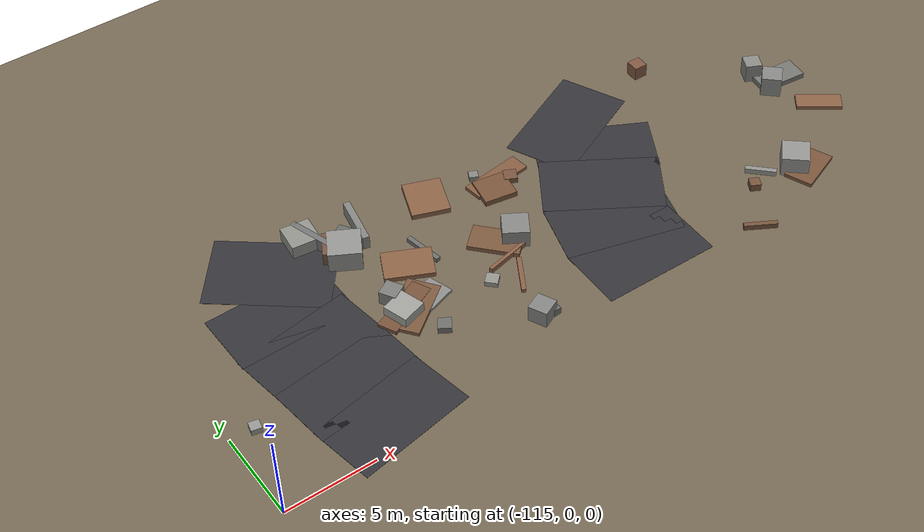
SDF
<sdf version="1.6">
 <world name="navitas_arena">
  <model name="ground_plane">
   <static>true</static>
   <link name="link">
    <collision name="collision">
     <geometry><plane><normal>0 0 1</normal><size>400 400</size></plane></geometry>
     <surface><friction><ode><mu>0.550</mu><mu2>0.550</mu2></ode></friction></surface>
    </collision>
    <visual name="visual">
     <cast_shadows>false</cast_shadows>
     <geometry><plane><normal>0 0 1</normal><size>400 400</size></plane></geometry>
     <material><ambient>0.450 0.400 0.320 1</ambient><diffuse>0.450 0.400 0.320 1</diffuse></material>
    </visual>
   </link>
  </model>
  <model name="road_kolay_1_13">
   <static>true</static>
   <pose>-108.025 1.800 0.040 0 0 1.749</pose>
   <link name="link">
    <collision name="col"><geometry><box><size>3.745 6.600 0.020</size></box></geometry></collision>
    <visual name="vis">
     <geometry><box><size>3.745 6.600 0.020</size></box></geometry>
     <material><ambient>0.20 0.20 0.22 1</ambient><diffuse>0.20 0.20 0.22 1</diffuse></material>
    </visual>
   </link>
  </model>
  <model name="road_kolay_1_14">
   <static>true</static>
   <pose>-108.442 4.600 0.040 0 0 1.688</pose>
   <link name="link">
    <collision name="col"><geometry><box><size>3.719 6.600 0.020</size></box></geometry></collision>
    <visual name="vis">
     <geometry><box><size>3.719 6.600 0.020</size></box></geometry>
     <material><ambient>0.20 0.20 0.22 1</ambient><diffuse>0.20 0.20 0.22 1</diffuse></material>
    </visual>
   </link>
  </model>
  <model name="road_kolay_1_15">
   <static>true</static>
   <pose>-108.822 7.460 0.040 0 0 1.717</pose>
   <link name="link">
    <collision name="col"><geometry><box><size>3.851 6.600 0.020</size></box></geometry></collision>
    <visual name="vis">
     <geometry><box><size>3.851 6.600 0.020</size></box></geometry>
     <material><ambient>0.20 0.20 0.22 1</ambient><diffuse>0.20 0.20 0.22 1</diffuse></material>
    </visual>
   </link>
  </model>
  <model name="road_kolay_1_16">
   <static>true</static>
   <pose>-109.058 10.340 0.040 0 0 1.586</pose>
   <link name="link">
    <collision name="col"><geometry><box><size>3.740 6.600 0.020</size></box></geometry></collision>
    <visual name="vis">
     <geometry><box><size>3.740 6.600 0.020</size></box></geometry>
     <material><ambient>0.20 0.20 0.22 1</ambient><diffuse>0.20 0.20 0.22 1</diffuse></material>
    </visual>
   </link>
  </model>
  <model name="road_kolay_1_17">
   <static>true</static>
   <pose>-107.990 13.129 0.040 0 0 0.898</pose>
   <link name="link">
    <collision name="col"><geometry><box><size>4.399 6.600 0.020</size></box></geometry></collision>
    <visual name="vis">
     <geometry><box><size>4.399 6.600 0.020</size></box></geometry>
     <material><ambient>0.20 0.20 0.22 1</ambient><diffuse>0.20 0.20 0.22 1</diffuse></material>
    </visual>
   </link>
  </model>
  <model name="road_kolay_2_9">
   <static>true</static>
   <pose>-91.807 3.200 0.040 0 0 1.559</pose>
   <link name="link">
    <collision name="col"><geometry><box><size>3.700 6.600 0.020</size></box></geometry></collision>
    <visual name="vis">
     <geometry><box><size>3.700 6.600 0.020</size></box></geometry>
     <material><ambient>0.20 0.20 0.22 1</ambient><diffuse>0.20 0.20 0.22 1</diffuse></material>
    </visual>
   </link>
  </model>
  <model name="road_kolay_2_10">
   <static>true</static>
   <pose>-91.428 5.898 0.040 0 0 1.298</pose>
   <link name="link">
    <collision name="col"><geometry><box><size>3.595 6.600 0.020</size></box></geometry></collision>
    <visual name="vis">
     <geometry><box><size>3.595 6.600 0.020</size></box></geometry>
     <material><ambient>0.20 0.20 0.22 1</ambient><diffuse>0.20 0.20 0.22 1</diffuse></material>
    </visual>
   </link>
  </model>
  <model name="road_kolay_2_11">
   <static>true</static>
   <pose>-90.288 8.426 0.040 0 0 1.007</pose>
   <link name="link">
    <collision name="col"><geometry><box><size>3.811 6.600 0.020</size></box></geometry></collision>
    <visual name="vis">
     <geometry><box><size>3.811 6.600 0.020</size></box></geometry>
     <material><ambient>0.20 0.20 0.22 1</ambient><diffuse>0.20 0.20 0.22 1</diffuse></material>
    </visual>
   </link>
  </model>
  <model name="road_kolay_2_12">
   <static>true</static>
   <pose>-88.901 10.817 0.040 0 0 1.087</pose>
   <link name="link">
    <collision name="col"><geometry><box><size>3.523 6.600 0.020</size></box></geometry></collision>
    <visual name="vis">
     <geometry><box><size>3.523 6.600 0.020</size></box></geometry>
     <material><ambient>0.20 0.20 0.22 1</ambient><diffuse>0.20 0.20 0.22 1</diffuse></material>
    </visual>
   </link>
  </model>
  <model name="road_kolay_2_13">
   <static>true</static>
   <pose>-88.925 13.350 0.040 0 0 2.004</pose>
   <link name="link">
    <collision name="col"><geometry><box><size>3.923 6.600 0.020</size></box></geometry></collision>
    <visual name="vis">
     <geometry><box><size>3.923 6.600 0.020</size></box></geometry>
     <material><ambient>0.20 0.20 0.22 1</ambient><diffuse>0.20 0.20 0.22 1</diffuse></material>
    </visual>
   </link>
  </model>
  <model name="blk_kolay_1_1_1">
   <static>true</static>
   <pose>-104.322 11.859 0.600 0 0 2.634</pose>
   <link name="link">
    <collision name="col"><geometry><box><size>1.782 1.782 1.199</size></box></geometry></collision>
    <visual name="vis">
     <geometry><box><size>1.782 1.782 1.199</size></box></geometry>
     <material><ambient>0.57 0.57 0.56 1</ambient><diffuse>0.57 0.57 0.56 1</diffuse></material>
    </visual>
   </link>
  </model>
  <model name="blk_kolay_1_1_2">
   <static>true</static>
   <pose>-104.964 13.025 0.400 0 0 1.879</pose>
   <link name="link">
    <collision name="col"><geometry><box><size>4.086 0.338 0.800</size></box></geometry></collision>
    <visual name="vis">
     <geometry><box><size>4.086 0.338 0.800</size></box></geometry>
     <material><ambient>0.45 0.45 0.45 1</ambient><diffuse>0.45 0.45 0.45 1</diffuse></material>
    </visual>
   </link>
  </model>
  <model name="blk_kolay_1_1_4">
   <static>true</static>
   <pose>-103.806 12.782 0.400 0 0 0.540</pose>
   <link name="link">
    <collision name="col"><geometry><box><size>0.953 0.953 0.800</size></box></geometry></collision>
    <visual name="vis">
     <geometry><box><size>0.953 0.953 0.800</size></box></geometry>
     <material><ambient>0.41 0.41 0.40 1</ambient><diffuse>0.41 0.41 0.40 1</diffuse></material>
    </visual>
   </link>
  </model>
  <model name="blk_kolay_1_1_6">
   <static>true</static>
   <pose>-104.458 12.369 0.400 0 0 2.639</pose>
   <link name="link">
    <collision name="col"><geometry><box><size>1.557 1.557 0.800</size></box></geometry></collision>
    <visual name="vis">
     <geometry><box><size>1.557 1.557 0.800</size></box></geometry>
     <material><ambient>0.47 0.33 0.24 1</ambient><diffuse>0.47 0.33 0.24 1</diffuse></material>
    </visual>
   </link>
  </model>
  <model name="blk_kolay_1_1_8">
   <static>true</static>
   <pose>-102.776 13.210 0.400 0 0 1.379</pose>
   <link name="link">
    <collision name="col"><geometry><box><size>2.851 0.372 0.800</size></box></geometry></collision>
    <visual name="vis">
     <geometry><box><size>2.851 0.372 0.800</size></box></geometry>
     <material><ambient>0.51 0.51 0.50 1</ambient><diffuse>0.51 0.51 0.50 1</diffuse></material>
    </visual>
   </link>
  </model>
  <model name="blk_kolay_1_1_9">
   <static>true</static>
   <pose>-105.637 14.066 0.400 0 0 1.455</pose>
   <link name="link">
    <collision name="col"><geometry><box><size>1.610 1.610 0.800</size></box></geometry></collision>
    <visual name="vis">
     <geometry><box><size>1.610 1.610 0.800</size></box></geometry>
     <material><ambient>0.56 0.56 0.54 1</ambient><diffuse>0.56 0.56 0.54 1</diffuse></material>
    </visual>
   </link>
  </model>
  <model name="blk_kolay_3_1_2">
   <static>true</static>
   <pose>-83.050 14.462 0.400 0 0 3.119</pose>
   <link name="link">
    <collision name="col"><geometry><box><size>0.777 0.777 0.800</size></box></geometry></collision>
    <visual name="vis">
     <geometry><box><size>0.777 0.777 0.800</size></box></geometry>
     <material><ambient>0.49 0.34 0.25 1</ambient><diffuse>0.49 0.34 0.25 1</diffuse></material>
    </visual>
   </link>
  </model>
  <model name="deb_kolay_8">
   <static>true</static>
   <pose>-80.963 3.409 0.577 0 0 0.845</pose>
   <link name="link">
    <collision name="col"><geometry><box><size>1.508 1.508 1.155</size></box></geometry></collision>
    <visual name="vis">
     <geometry><box><size>1.508 1.508 1.155</size></box></geometry>
     <material><ambient>0.57 0.57 0.56 1</ambient><diffuse>0.57 0.57 0.56 1</diffuse></material>
    </visual>
   </link>
  </model>
  <model name="deb_kolay_10">
   <static>true</static>
   <pose>-104.046 6.777 0.382 0 0 1.870</pose>
   <link name="link">
    <collision name="col"><geometry><box><size>1.433 1.433 0.765</size></box></geometry></collision>
    <visual name="vis">
     <geometry><box><size>1.433 1.433 0.765</size></box></geometry>
     <material><ambient>0.62 0.62 0.60 1</ambient><diffuse>0.62 0.62 0.60 1</diffuse></material>
    </visual>
   </link>
  </model>
  <model name="deb_kolay_13">
   <static>true</static>
   <pose>-80.438 2.837 0.106 0 0 0.374</pose>
   <link name="link">
    <collision name="col"><geometry><box><size>2.607 1.601 0.213</size></box></geometry></collision>
    <visual name="vis">
     <geometry><box><size>2.607 1.601 0.213</size></box></geometry>
     <material><ambient>0.47 0.33 0.23 1</ambient><diffuse>0.47 0.33 0.23 1</diffuse></material>
    </visual>
   </link>
  </model>
  <model name="deb_kolay_15">
   <static>true</static>
   <pose>-98.607 12.939 0.154 0 0 1.221</pose>
   <link name="link">
    <collision name="col"><geometry><box><size>2.431 2.108 0.307</size></box></geometry></collision>
    <visual name="vis">
     <geometry><box><size>2.431 2.108 0.307</size></box></geometry>
     <material><ambient>0.54 0.38 0.27 1</ambient><diffuse>0.54 0.38 0.27 1</diffuse></material>
    </visual>
   </link>
  </model>
  <model name="deb_kolay_16">
   <static>true</static>
   <pose>-77.864 10.486 0.547 0 0 1.128</pose>
   <link name="link">
    <collision name="col"><geometry><box><size>0.928 0.928 1.095</size></box></geometry></collision>
    <visual name="vis">
     <geometry><box><size>0.928 0.928 1.095</size></box></geometry>
     <material><ambient>0.53 0.53 0.52 1</ambient><diffuse>0.53 0.53 0.52 1</diffuse></material>
    </visual>
   </link>
  </model>
  <model name="deb_kolay_25">
   <static>true</static>
   <pose>-85.562 0.948 0.156 0 0 2.621</pose>
   <link name="link">
    <collision name="col"><geometry><box><size>1.815 0.260 0.312</size></box></geometry></collision>
    <visual name="vis">
     <geometry><box><size>1.815 0.260 0.312</size></box></geometry>
     <material><ambient>0.45 0.32 0.23 1</ambient><diffuse>0.45 0.32 0.23 1</diffuse></material>
    </visual>
   </link>
  </model>
  <model name="deb_kolay_28">
   <static>true</static>
   <pose>-97.736 5.515 0.111 0 0 1.058</pose>
   <link name="link">
    <collision name="col"><geometry><box><size>2.294 0.247 0.223</size></box></geometry></collision>
    <visual name="vis">
     <geometry><box><size>2.294 0.247 0.223</size></box></geometry>
     <material><ambient>0.53 0.37 0.26 1</ambient><diffuse>0.53 0.37 0.26 1</diffuse></material>
    </visual>
   </link>
  </model>
  <model name="deb_kolay_36">
   <static>true</static>
   <pose>-97.414 8.191 0.133 0 0 2.306</pose>
   <link name="link">
    <collision name="col"><geometry><box><size>2.800 1.593 0.266</size></box></geometry></collision>
    <visual name="vis">
     <geometry><box><size>2.800 1.593 0.266</size></box></geometry>
     <material><ambient>0.48 0.34 0.24 1</ambient><diffuse>0.48 0.34 0.24 1</diffuse></material>
    </visual>
   </link>
  </model>
  <model name="deb_kolay_40">
   <static>true</static>
   <pose>-103.966 8.029 0.397 0 0 2.089</pose>
   <link name="link">
    <collision name="col"><geometry><box><size>0.954 0.954 0.795</size></box></geometry></collision>
    <visual name="vis">
     <geometry><box><size>0.954 0.954 0.795</size></box></geometry>
     <material><ambient>0.48 0.48 0.47 1</ambient><diffuse>0.48 0.48 0.47 1</diffuse></material>
    </visual>
   </link>
  </model>
  <model name="deb_kolay_41">
   <static>true</static>
   <pose>-77.736 8.934 0.591 0 0 2.373</pose>
   <link name="link">
    <collision name="col"><geometry><box><size>1.121 1.121 1.182</size></box></geometry></collision>
    <visual name="vis">
     <geometry><box><size>1.121 1.121 1.182</size></box></geometry>
     <material><ambient>0.52 0.52 0.51 1</ambient><diffuse>0.52 0.52 0.51 1</diffuse></material>
    </visual>
   </link>
  </model>
  <model name="deb_kolay_43">
   <static>true</static>
   <pose>-103.805 7.110 0.112 0 0 0.438</pose>
   <link name="link">
    <collision name="col"><geometry><box><size>3.334 1.106 0.223</size></box></geometry></collision>
    <visual name="vis">
     <geometry><box><size>3.334 1.106 0.223</size></box></geometry>
     <material><ambient>0.46 0.32 0.23 1</ambient><diffuse>0.46 0.32 0.23 1</diffuse></material>
    </visual>
   </link>
  </model>
  <model name="deb_kolay_46">
   <static>true</static>
   <pose>-76.802 9.417 0.159 0 0 3.038</pose>
   <link name="link">
    <collision name="col"><geometry><box><size>2.715 1.374 0.318</size></box></geometry></collision>
    <visual name="vis">
     <geometry><box><size>2.715 1.374 0.318</size></box></geometry>
     <material><ambient>0.45 0.45 0.44 1</ambient><diffuse>0.45 0.45 0.44 1</diffuse></material>
    </visual>
   </link>
  </model>
  <model name="deb_kolay_55">
   <static>true</static>
   <pose>-95.585 12.878 0.157 0 0 1.131</pose>
   <link name="link">
    <collision name="col"><geometry><box><size>0.497 0.497 0.314</size></box></geometry></collision>
    <visual name="vis">
     <geometry><box><size>0.497 0.497 0.314</size></box></geometry>
     <material><ambient>0.52 0.52 0.50 1</ambient><diffuse>0.52 0.52 0.50 1</diffuse></material>
    </visual>
   </link>
  </model>
  <model name="deb_kolay_63">
   <static>true</static>
   <pose>-98.535 2.644 0.483 0 0 2.010</pose>
   <link name="link">
    <collision name="col"><geometry><box><size>1.066 1.066 0.966</size></box></geometry></collision>
    <visual name="vis">
     <geometry><box><size>1.066 1.066 0.966</size></box></geometry>
     <material><ambient>0.51 0.51 0.50 1</ambient><diffuse>0.51 0.51 0.50 1</diffuse></material>
    </visual>
   </link>
  </model>
  <model name="deb_kolay_69">
   <static>true</static>
   <pose>-94.627 12.087 0.100 0 0 0.132</pose>
   <link name="link">
    <collision name="col"><geometry><box><size>3.488 1.114 0.199</size></box></geometry></collision>
    <visual name="vis">
     <geometry><box><size>3.488 1.114 0.199</size></box></geometry>
     <material><ambient>0.52 0.36 0.26 1</ambient><diffuse>0.52 0.36 0.26 1</diffuse></material>
    </visual>
   </link>
  </model>
  <model name="deb_kolay_71">
   <static>true</static>
   <pose>-102.885 4.895 0.191 0 0 2.582</pose>
   <link name="link">
    <collision name="col"><geometry><box><size>0.717 0.717 0.382</size></box></geometry></collision>
    <visual name="vis">
     <geometry><box><size>0.717 0.717 0.382</size></box></geometry>
     <material><ambient>0.42 0.42 0.41 1</ambient><diffuse>0.42 0.42 0.41 1</diffuse></material>
    </visual>
   </link>
  </model>
  <model name="deb_kolay_76">
   <static>true</static>
   <pose>-103.033 6.876 0.082 0 0 0.308</pose>
   <link name="link">
    <collision name="col"><geometry><box><size>3.347 1.454 0.163</size></box></geometry></collision>
    <visual name="vis">
     <geometry><box><size>3.347 1.454 0.163</size></box></geometry>
     <material><ambient>0.54 0.54 0.53 1</ambient><diffuse>0.54 0.54 0.53 1</diffuse></material>
    </visual>
   </link>
  </model>
  <model name="deb_kolay_77">
   <static>true</static>
   <pose>-99.175 6.052 0.147 0 0 2.350</pose>
   <link name="link">
    <collision name="col"><geometry><box><size>0.691 0.691 0.293</size></box></geometry></collision>
    <visual name="vis">
     <geometry><box><size>0.691 0.691 0.293</size></box></geometry>
     <material><ambient>0.57 0.57 0.55 1</ambient><diffuse>0.57 0.57 0.55 1</diffuse></material>
    </visual>
   </link>
  </model>
  <model name="deb_kolay_78">
   <static>true</static>
   <pose>-100.780 9.925 0.127 0 0 1.757</pose>
   <link name="link">
    <collision name="col"><geometry><box><size>2.190 0.266 0.254</size></box></geometry></collision>
    <visual name="vis">
     <geometry><box><size>2.190 0.266 0.254</size></box></geometry>
     <material><ambient>0.43 0.43 0.42 1</ambient><diffuse>0.43 0.43 0.42 1</diffuse></material>
    </visual>
   </link>
  </model>
  <model name="deb_kolay_79">
   <static>true</static>
   <pose>-97.968 2.604 0.210 0 0 1.537</pose>
   <link name="link">
    <collision name="col"><geometry><box><size>0.651 0.651 0.421</size></box></geometry></collision>
    <visual name="vis">
     <geometry><box><size>0.651 0.651 0.421</size></box></geometry>
     <material><ambient>0.42 0.42 0.41 1</ambient><diffuse>0.42 0.42 0.41 1</diffuse></material>
    </visual>
   </link>
  </model>
  <model name="deb_kolay_80">
   <static>true</static>
   <pose>-113.666 4.868 0.173 0 0 2.934</pose>
   <link name="link">
    <collision name="col"><geometry><box><size>0.553 0.553 0.347</size></box></geometry></collision>
    <visual name="vis">
     <geometry><box><size>0.553 0.553 0.347</size></box></geometry>
     <material><ambient>0.58 0.58 0.57 1</ambient><diffuse>0.58 0.58 0.57 1</diffuse></material>
    </visual>
   </link>
  </model>
  <model name="deb_kolay_82">
   <static>true</static>
   <pose>-102.042 9.485 0.137 0 0 2.689</pose>
   <link name="link">
    <collision name="col"><geometry><box><size>2.662 1.871 0.274</size></box></geometry></collision>
    <visual name="vis">
     <geometry><box><size>2.662 1.871 0.274</size></box></geometry>
     <material><ambient>0.54 0.38 0.27 1</ambient><diffuse>0.54 0.38 0.27 1</diffuse></material>
    </visual>
   </link>
  </model>
  <model name="deb_kolay_83">
   <static>true</static>
   <pose>-97.606 6.895 0.152 0 0 0.213</pose>
   <link name="link">
    <collision name="col"><geometry><box><size>2.594 0.200 0.304</size></box></geometry></collision>
    <visual name="vis">
     <geometry><box><size>2.594 0.200 0.304</size></box></geometry>
     <material><ambient>0.53 0.37 0.27 1</ambient><diffuse>0.53 0.37 0.27 1</diffuse></material>
    </visual>
   </link>
  </model>
  <model name="deb_kolay_88">
   <static>true</static>
   <pose>-103.424 6.904 0.104 0 0 0.648</pose>
   <link name="link">
    <collision name="col"><geometry><box><size>3.365 1.814 0.207</size></box></geometry></collision>
    <visual name="vis">
     <geometry><box><size>3.365 1.814 0.207</size></box></geometry>
     <material><ambient>0.48 0.34 0.24 1</ambient><diffuse>0.48 0.34 0.24 1</diffuse></material>
    </visual>
   </link>
  </model>
  <model name="deb_kolay_92">
   <static>true</static>
   <pose>-95.243 11.390 0.160 0 0 2.976</pose>
   <link name="link">
    <collision name="col"><geometry><box><size>1.849 1.736 0.319</size></box></geometry></collision>
    <visual name="vis">
     <geometry><box><size>1.849 1.736 0.319</size></box></geometry>
     <material><ambient>0.47 0.33 0.23 1</ambient><diffuse>0.47 0.33 0.23 1</diffuse></material>
    </visual>
   </link>
  </model>
  <model name="deb_kolay_93">
   <static>true</static>
   <pose>-83.802 3.420 0.216 0 0 1.089</pose>
   <link name="link">
    <collision name="col"><geometry><box><size>0.580 0.580 0.432</size></box></geometry></collision>
    <visual name="vis">
     <geometry><box><size>0.580 0.580 0.432</size></box></geometry>
     <material><ambient>0.46 0.33 0.23 1</ambient><diffuse>0.46 0.33 0.23 1</diffuse></material>
    </visual>
   </link>
  </model>
  <model name="deb_kolay_101">
   <static>true</static>
   <pose>-76.375 6.419 0.118 0 0 2.510</pose>
   <link name="link">
    <collision name="col"><geometry><box><size>2.564 1.025 0.235</size></box></geometry></collision>
    <visual name="vis">
     <geometry><box><size>2.564 1.025 0.235</size></box></geometry>
     <material><ambient>0.54 0.38 0.27 1</ambient><diffuse>0.54 0.38 0.27 1</diffuse></material>
    </visual>
   </link>
  </model>
  <model name="deb_kolay_104">
   <static>true</static>
   <pose>-82.793 4.073 0.154 0 0 2.348</pose>
   <link name="link">
    <collision name="col"><geometry><box><size>1.697 0.285 0.308</size></box></geometry></collision>
    <visual name="vis">
     <geometry><box><size>1.697 0.285 0.308</size></box></geometry>
     <material><ambient>0.56 0.56 0.55 1</ambient><diffuse>0.56 0.56 0.55 1</diffuse></material>
    </visual>
   </link>
  </model>
  <model name="deb_kolay_116">
   <static>true</static>
   <pose>-94.004 11.689 0.169 0 0 2.668</pose>
   <link name="link">
    <collision name="col"><geometry><box><size>0.731 0.731 0.339</size></box></geometry></collision>
    <visual name="vis">
     <geometry><box><size>0.731 0.731 0.339</size></box></geometry>
     <material><ambient>0.47 0.33 0.24 1</ambient><diffuse>0.47 0.33 0.24 1</diffuse></material>
    </visual>
   </link>
  </model>
  <model name="chic_kolay_2">
   <static>true</static>
   <pose>-96.359 7.944 0.525 0 0 1.016</pose>
   <link name="link">
    <collision name="col"><geometry><box><size>1.435 1.435 1.051</size></box></geometry></collision>
    <visual name="vis">
     <geometry><box><size>1.435 1.435 1.051</size></box></geometry>
     <material><ambient>0.52 0.52 0.51 1</ambient><diffuse>0.52 0.52 0.51 1</diffuse></material>
    </visual>
   </link>
  </model>
 </world>
</sdf>
